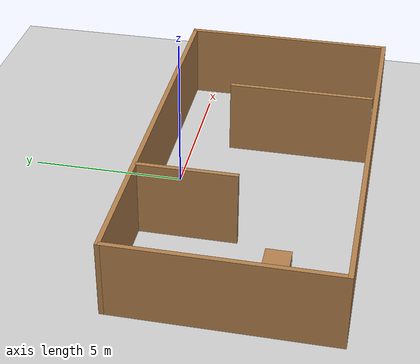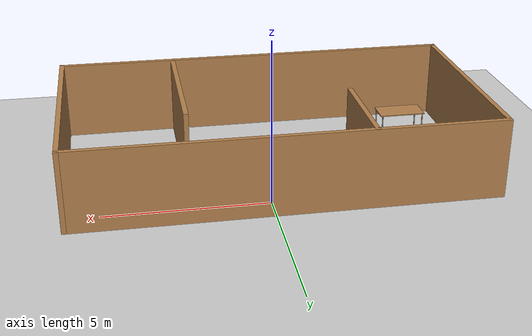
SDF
<sdf version="1.7">
 <world name="default">
  <light name="sun" type="directional">
   <pose>0 0 10 0 -0 0</pose>
   <diffuse>0.8 0.8 0.8 1</diffuse>
   <specular>0.2 0.2 0.2 1</specular>
   <attenuation>
    <range>1000</range>
    <constant>0.9</constant>
    <linear>0.01</linear>
    <quadratic>0.001</quadratic>
   </attenuation>
   <direction>-0.5 0.1 -0.9</direction>
   <spot><inner_angle>0</inner_angle><outer_angle>0</outer_angle><falloff>0</falloff></spot>
  </light>
  <model name="ground_plane">
   <static>1</static>
   <link name="world_platform">
    <collision name="collision">
     <geometry><plane><normal>0 0 1</normal><size>100 100</size></plane></geometry>
     <surface><friction><ode><mu>100</mu><mu2>50</mu2></ode></friction></surface>
    </collision>
    <visual name="visual">
     <cast_shadows>0</cast_shadows>
     <geometry><plane><normal>0 0 1</normal><size>100 100</size></plane></geometry>
     <material>
      <script><uri>file://media/materials/scripts/gazebo.material</uri><name>Gazebo/Grey</name></script>
     </material>
    </visual>
   </link>
  </model>
  <gravity>0 0 -9.8</gravity>
  <magnetic_field>6e-06 2.3e-05 -4.2e-05</magnetic_field>
  <atmosphere type="adiabatic"/>
  <physics type="ode">
   <max_step_size>0.001</max_step_size>
   <real_time_factor>1</real_time_factor>
   <real_time_update_rate>1000</real_time_update_rate>
  </physics>
  <scene><ambient>0.4 0.4 0.4 1</ambient><background>0.7 0.7 0.7 1</background><shadows>1</shadows></scene>
  <device>default</device>
  <spherical_coordinates>
   <surface_model>EARTH_WGS84</surface_model>
   <latitude_deg>0</latitude_deg>
   <longitude_deg>0</longitude_deg>
   <elevation>0</elevation>
   <heading_deg>0</heading_deg>
  </spherical_coordinates>
  <model name="wall_env">
   <pose>-0.429899 -2.6824 0 0 -0 0</pose>
   <link name="Wall_2">
    <collision name="Wall_2_Collision">
     <geometry><box><size>7 0.15 2.5</size></box></geometry>
     <pose>0 0 1.25 0 -0 0</pose>
    </collision>
    <visual name="Wall_2_Visual">
     <pose>0 0 1.25 0 -0 0</pose>
     <geometry><box><size>7 0.15 2.5</size></box></geometry>
     <material>
      <script><uri>file://media/materials/scripts/gazebo.material</uri><name>Gazebo/Wood</name></script>
      <ambient>1 1 1 1</ambient>
     </material>
    </visual>
    <pose>-6.425 -0 0 0 -0 -1.5708</pose>
   </link>
   <link name="Wall_3">
    <collision name="Wall_3_Collision">
     <geometry><box><size>13 0.15 2.5</size></box></geometry>
     <pose>0 0 1.25 0 -0 0</pose>
    </collision>
    <visual name="Wall_3_Visual">
     <pose>0 0 1.25 0 -0 0</pose>
     <geometry><box><size>13 0.15 2.5</size></box></geometry>
     <material>
      <script><uri>file://media/materials/scripts/gazebo.material</uri><name>Gazebo/Wood</name></script>
      <ambient>1 1 1 1</ambient>
     </material>
    </visual>
    <pose>0 -3.425 0 0 -0 0</pose>
   </link>
   <link name="Wall_4">
    <collision name="Wall_4_Collision">
     <geometry><box><size>7 0.15 2.5</size></box></geometry>
     <pose>0 0 1.25 0 -0 0</pose>
    </collision>
    <visual name="Wall_4_Visual">
     <pose>0 0 1.25 0 -0 0</pose>
     <geometry><box><size>7 0.15 2.5</size></box></geometry>
     <material>
      <script><uri>file://media/materials/scripts/gazebo.material</uri><name>Gazebo/Wood</name></script>
      <ambient>1 1 1 1</ambient>
     </material>
    </visual>
    <pose>6.425 -0 0 0 -0 1.5708</pose>
   </link>
   <link name="Wall_5">
    <collision name="Wall_5_Collision">
     <geometry><box><size>13 0.15 2.5</size></box></geometry>
     <pose>0 0 1.25 0 -0 0</pose>
    </collision>
    <visual name="Wall_5_Visual">
     <pose>0 0 1.25 0 -0 0</pose>
     <geometry><box><size>13 0.15 2.5</size></box></geometry>
     <material>
      <script><uri>file://media/materials/scripts/gazebo.material</uri><name>Gazebo/Wood</name></script>
      <ambient>1 1 1 1</ambient>
     </material>
    </visual>
    <pose>0 3.425 0 0 -0 3.14159</pose>
   </link>
   <link name="Wall_7">
    <collision name="Wall_7_Collision">
     <geometry><box><size>3.25 0.15 2.5</size></box></geometry>
     <pose>0 0 1.25 0 -0 0</pose>
    </collision>
    <visual name="Wall_7_Visual">
     <pose>0 0 1.25 0 -0 0</pose>
     <geometry><box><size>3.25 0.15 2.5</size></box></geometry>
     <material>
      <script><uri>file://media/materials/scripts/gazebo.material</uri><name>Gazebo/Wood</name></script>
      <ambient>1 1 1 1</ambient>
     </material>
    </visual>
    <pose>-2.48974 1.85751 0 0 -0 -1.5708</pose>
   </link>
   <link name="Wall_9">
    <collision name="Wall_9_Collision">
     <geometry><box><size>4.75 0.15 2.5</size></box></geometry>
     <pose>0 0 1.25 0 -0 0</pose>
    </collision>
    <visual name="Wall_9_Visual">
     <pose>0 0 1.25 0 -0 0</pose>
     <geometry><box><size>4.75 0.15 2.5</size></box></geometry>
     <material>
      <script><uri>file://media/materials/scripts/gazebo.material</uri><name>Gazebo/Wood</name></script>
      <ambient>1 1 1 1</ambient>
     </material>
    </visual>
    <pose>2.75728 -0.938827 0 0 -0 -1.5708</pose>
   </link>
   <static>1</static>
  </model>
  <model name="table">
   <static>1</static>
   <link name="table_link">
    <collision name="surface">
     <pose>0 0 1 0 -0 0</pose>
     <geometry><box><size>1.5 0.8 0.03</size></box></geometry>
     <surface><friction><ode><mu>0.6</mu><mu2>0.6</mu2></ode></friction></surface>
    </collision>
    <visual name="visual1">
     <pose>0 0 1 0 -0 0</pose>
     <geometry><box><size>1.5 0.8 0.03</size></box></geometry>
     <material>
      <script><uri>file://media/materials/scripts/gazebo.material</uri><name>Gazebo/Wood</name></script>
     </material>
    </visual>
    <collision name="front_left_leg">
     <pose>0.68 0.38 0.5 0 -0 0</pose>
     <geometry><cylinder><radius>0.02</radius><length>1</length></cylinder></geometry>
    </collision>
    <visual name="front_left_leg">
     <pose>0.68 0.38 0.5 0 -0 0</pose>
     <geometry><cylinder><radius>0.02</radius><length>1</length></cylinder></geometry>
     <material>
      <script><uri>file://media/materials/scripts/gazebo.material</uri><name>Gazebo/Grey</name></script>
     </material>
    </visual>
    <collision name="front_right_leg">
     <pose>0.68 -0.38 0.5 0 -0 0</pose>
     <geometry><cylinder><radius>0.02</radius><length>1</length></cylinder></geometry>
    </collision>
    <visual name="front_right_leg">
     <pose>0.68 -0.38 0.5 0 -0 0</pose>
     <geometry><cylinder><radius>0.02</radius><length>1</length></cylinder></geometry>
     <material>
      <script><uri>file://media/materials/scripts/gazebo.material</uri><name>Gazebo/Grey</name></script>
     </material>
    </visual>
    <collision name="back_right_leg">
     <pose>-0.68 -0.38 0.5 0 -0 0</pose>
     <geometry><cylinder><radius>0.02</radius><length>1</length></cylinder></geometry>
    </collision>
    <visual name="back_right_leg">
     <pose>-0.68 -0.38 0.5 0 -0 0</pose>
     <geometry><cylinder><radius>0.02</radius><length>1</length></cylinder></geometry>
     <material>
      <script><uri>file://media/materials/scripts/gazebo.material</uri><name>Gazebo/Grey</name></script>
     </material>
    </visual>
    <collision name="back_left_leg">
     <pose>-0.68 0.38 0.5 0 -0 0</pose>
     <geometry><cylinder><radius>0.02</radius><length>1</length></cylinder></geometry>
    </collision>
    <visual name="back_left_leg">
     <pose>-0.68 0.38 0.5 0 -0 0</pose>
     <geometry><cylinder><radius>0.02</radius><length>1</length></cylinder></geometry>
     <material>
      <script><uri>file://media/materials/scripts/gazebo.material</uri><name>Gazebo/Grey</name></script>
     </material>
    </visual>
   </link>
   <pose>-5.05909 -3.90707 0 0 -0 0</pose>
  </model>
 </world>
</sdf>
